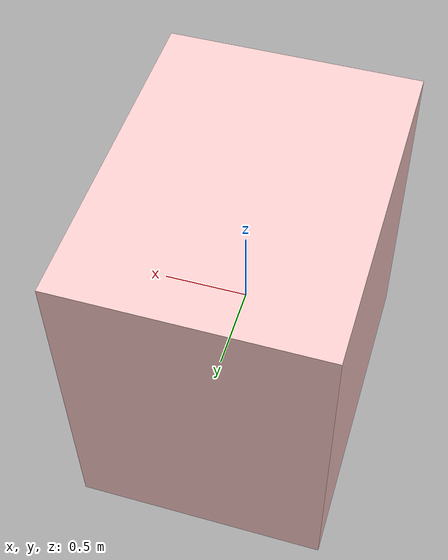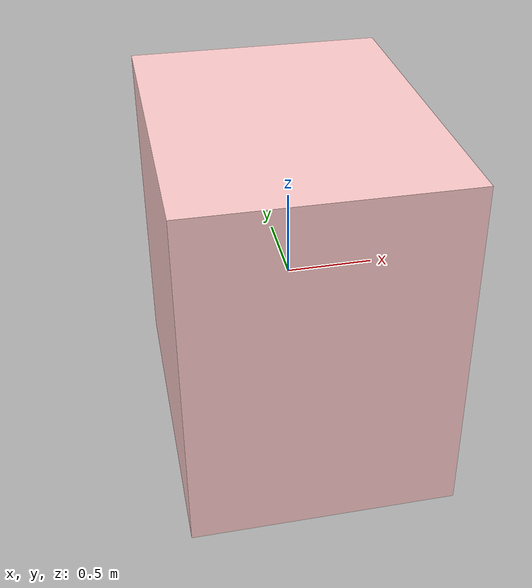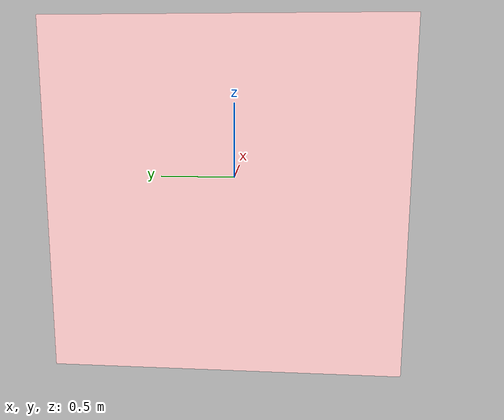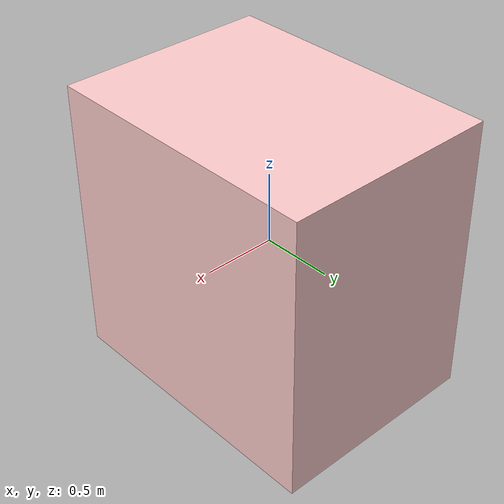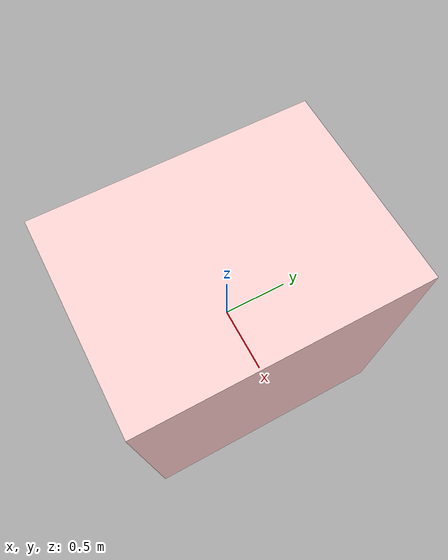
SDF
<?xml version='1.0'?>
<sdf version='1.7'>
  <model name='cabinet_shelf'>
    <!-- disable dynamics -->
    <static>true</static>
    <allow_auto_disable>1</allow_auto_disable>

    <!-- create physical object -->
    <link name='cabinet_shelf'>

      <!-- collision box definition -->
      <collision name='collision'>
        <laser_retro>0</laser_retro>
        <geometry>
          <box>
            <size>1.5 2 2</size>
          </box>
        </geometry>
        <surface>
          <!-- make it basically impossible to move after collision -->
          <friction>
            <ode>
              <mu>100</mu>
              <mu2>100</mu2>
            </ode>
            <torsional>
              <coefficient>100</coefficient>
            </torsional>
          </friction>
          <!-- no bounce and default collision values -->
        </surface>
      </collision>

      <!-- visual definition of the wall -->
      <visual name='visual'>
        <material>
          <ambient>1 0.8 0.8 1</ambient>
          <diffuse>1 0.8 0.8 1</diffuse>
          <specular>1 1 1 0.5</specular>
          <emissive>0 0 0 1</emissive>
        </material>
        <geometry>
          <box>
            <size>1.5 2 2</size>
          </box>
        </geometry>
      </visual>

    </link>
  </model>
</sdf>
